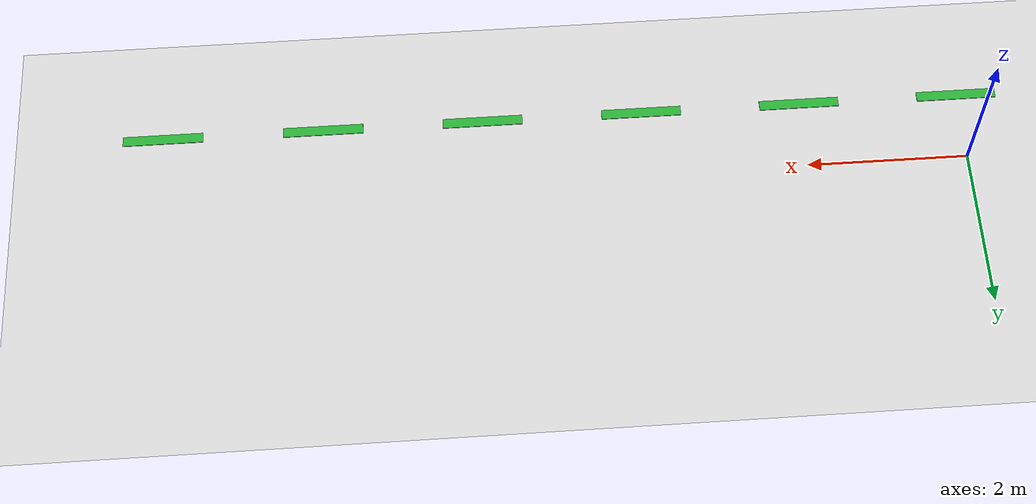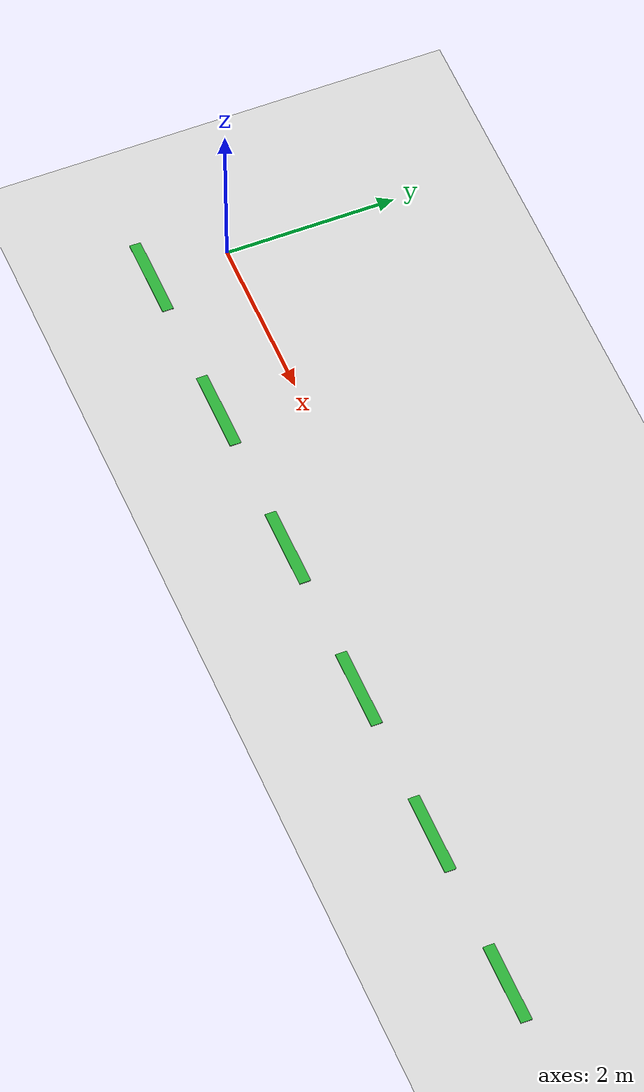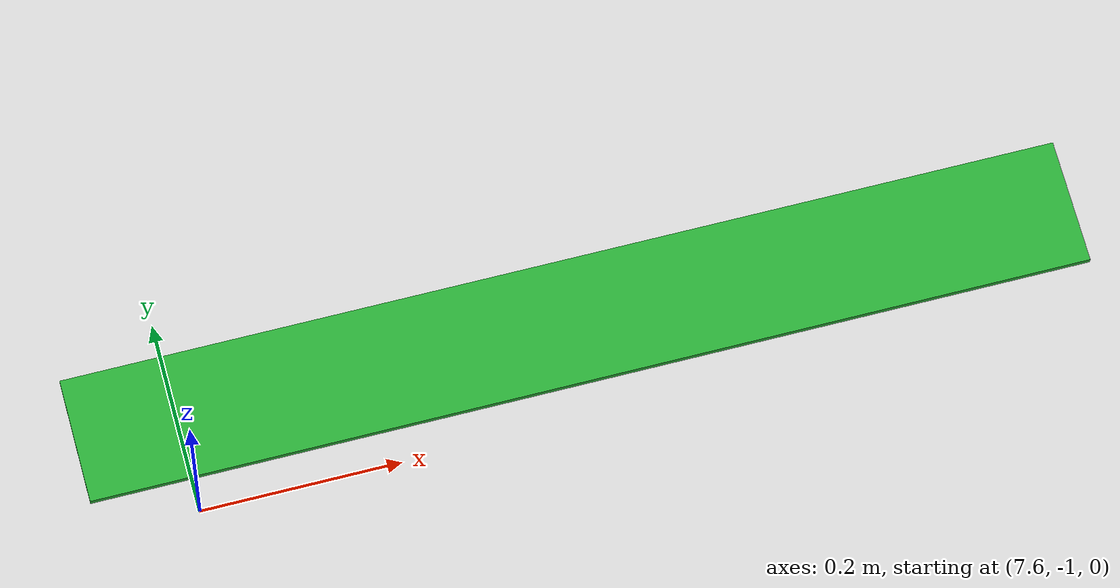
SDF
<sdf version="1.4">
 <world name="trials_task_3">
  <physics type="ode">
   <gravity>0 0 -9.81</gravity>
   <ode>
    <solver>
     <use_dynamic_moi_rescaling>true</use_dynamic_moi_rescaling>
     <type>quick</type>
     <iters>50</iters>
     <sor>1.4</sor>
    </solver>
    <constraints>
     <cfm>0.0</cfm>
     <erp>0.2</erp>
     <contact_max_correcting_vel>100.0</contact_max_correcting_vel>
     <contact_surface_layer>0.0</contact_surface_layer>
    </constraints>
   </ode>
   <real_time_update_rate>1000</real_time_update_rate>
   <max_step_size>0.001</max_step_size>
  </physics>
  <physics name="preset_1" type="ode">
   <gravity>0 0 -9.81</gravity>
   <ode>
    <solver><type>quick</type><iters>50</iters><sor>1.0</sor></solver>
    <constraints>
     <cfm>0.0</cfm>
     <erp>0.2</erp>
     <contact_max_correcting_vel>100.0</contact_max_correcting_vel>
     <contact_surface_layer>0.0</contact_surface_layer>
    </constraints>
   </ode>
   <real_time_update_rate>2000</real_time_update_rate>
   <max_step_size>0.0005</max_step_size>
  </physics>
  <physics name="preset_2" type="ode">
   <gravity>0 0 -9.81</gravity>
   <ode>
    <solver><type>quick</type><iters>200</iters><sor>1.0</sor></solver>
    <constraints>
     <cfm>0.0</cfm>
     <erp>0.2</erp>
     <contact_max_correcting_vel>100.0</contact_max_correcting_vel>
     <contact_surface_layer>0.0</contact_surface_layer>
    </constraints>
   </ode>
   <real_time_update_rate>2000</real_time_update_rate>
   <max_step_size>0.0005</max_step_size>
  </physics>
  <include><uri>model://sun</uri></include>
  <include><uri>model://ground_plane</uri></include>
  <model name="green_tape_0">
   <pose>0 -0.9 0 0 0 0</pose>
   <static>true</static>
   <link name="link">
    <visual name="visual">
     <geometry><box><size>1 0.13 0.01</size></box></geometry>
     <material><script><name>Gazebo/Green</name></script></material>
    </visual>
   </link>
  </model>
  <model name="green_tape_1">
   <pose>2 -0.9 0 0 0 0</pose>
   <static>true</static>
   <link name="link">
    <visual name="visual">
     <geometry><box><size>1 0.13 0.01</size></box></geometry>
     <material><script><name>Gazebo/Green</name></script></material>
    </visual>
   </link>
  </model>
  <model name="green_tape_2">
   <pose>4 -0.9 0 0 0 0</pose>
   <static>true</static>
   <link name="link">
    <visual name="visual">
     <geometry><box><size>1 0.13 0.01</size></box></geometry>
     <material><script><name>Gazebo/Green</name></script></material>
    </visual>
   </link>
  </model>
  <model name="green_tape_3">
   <pose>6 -0.9 0 0 0 0</pose>
   <static>true</static>
   <link name="link">
    <visual name="visual">
     <geometry><box><size>1 0.13 0.01</size></box></geometry>
     <material><script><name>Gazebo/Green</name></script></material>
    </visual>
   </link>
  </model>
  <model name="green_tape_4">
   <pose>8 -0.9 0 0 0 0</pose>
   <static>true</static>
   <link name="link">
    <visual name="visual">
     <geometry><box><size>1 0.13 0.01</size></box></geometry>
     <material><script><name>Gazebo/Green</name></script></material>
    </visual>
   </link>
  </model>
  <model name="green_tape_5">
   <pose>10 -0.9 0 0 0 0</pose>
   <static>true</static>
   <link name="link">
    <visual name="visual">
     <geometry><box><size>1 0.13 0.01</size></box></geometry>
     <material><script><name>Gazebo/Green</name></script></material>
    </visual>
   </link>
  </model>
  <plugin filename="libVRCPlugin.so" name="vrc_plugin">
   <atlas><model_name>atlas</model_name><pin_link>utorso</pin_link></atlas>
   <drc_vehicle>
    <model_name>drc_vehicle_xp900</model_name>
    <seat_link>polaris_ranger_xp900::chassis</seat_link>
   </drc_vehicle>
   <drc_fire_hose>
    <fire_hose_model>fire_hose</fire_hose_model>
    <coupling_link>coupling</coupling_link>
    <standpipe_model>standpipe</standpipe_model>
    <spout_link>standpipe</spout_link>
    <thread_pitch>-1000</thread_pitch>
    <coupling_relative_pose>1.17038e-05 -0.125623 0.35 -0.0412152 -1.57078 1.61199</coupling_relative_pose>
   </drc_fire_hose>
  </plugin>
 </world>
</sdf>
